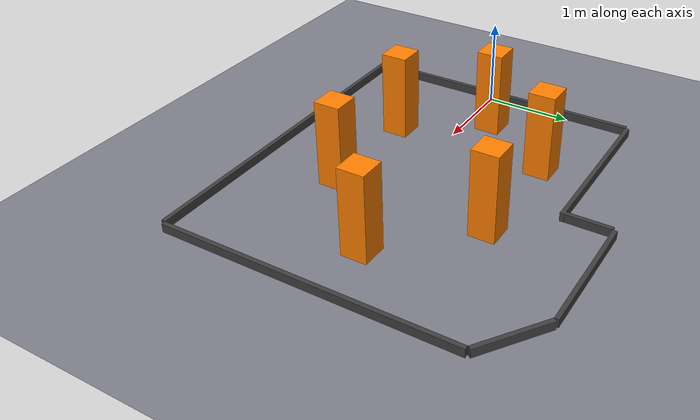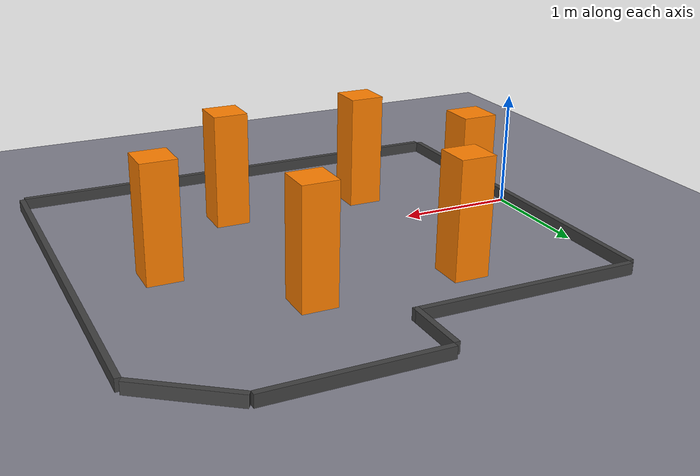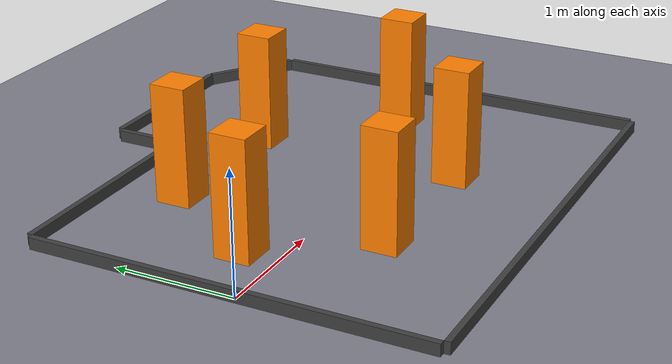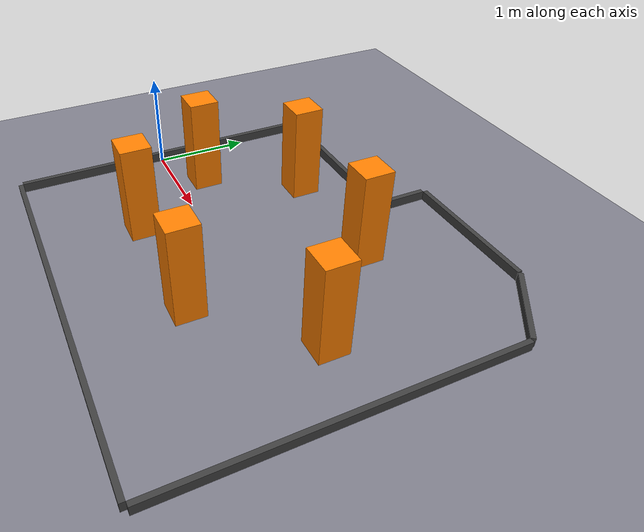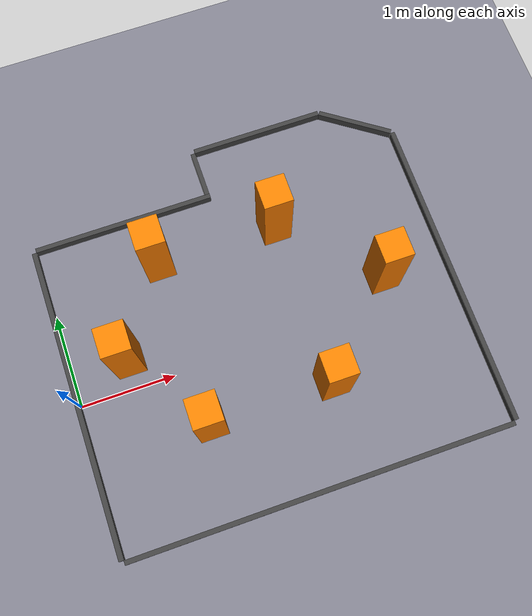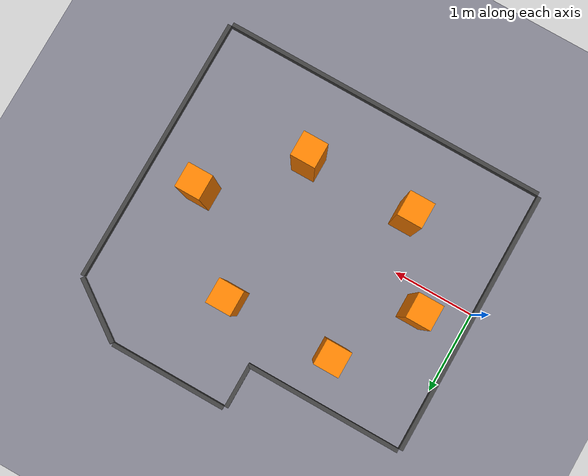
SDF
<?xml version="1.0" encoding="UTF-8"?>
<sdf version="1.9">
  <world name="kthspacelab">
    <physics type="ode">
      <max_step_size>0.006</max_step_size>
      <real_time_factor>1.0</real_time_factor>
      <real_time_update_rate>200</real_time_update_rate>
    </physics>
    <gravity>0 0 -9.8</gravity>
    <magnetic_field>6e-06 2.3e-05 -4.2e-05</magnetic_field>
    <atmosphere type="adiabatic"/>
    <scene>
      <grid>false</grid>
      <ambient>0.8 0.8 0.8 1</ambient>
      <background>0.05 0.05 0.07 1</background>
      <shadows>true</shadows>
    </scene>
    <model name="ground_plane">
      <static>true</static>
      <link name="link">
        <collision name="collision">
          <geometry>
            <plane>
              <normal>0 0 1</normal>
              <size>6 6</size>
            </plane>
          </geometry>
        </collision>
        <visual name="visual">
          <geometry>
            <plane>
              <normal>0 0 1</normal>
              <size>6 6</size>
            </plane>
          </geometry>
          <material>
            <ambient>0.95 0.95 0.95 1</ambient>
            <diffuse>0.5 0.5 0.55 1</diffuse>
            <specular>0.2 0.2 0.2 1</specular>
            <emissive>0 0 0 1</emissive>
          </material>
        </visual>
        <pose>2.0 0.5 0 0 0 0</pose>
        <enable_wind>false</enable_wind>
      </link>
      <pose>0 0 0 0 -0 0</pose>
      <self_collide>false</self_collide>
    </model>
    <light name="sunUTC" type="directional">
      <pose>0 0 500 0 -0 0</pose>
      <cast_shadows>true</cast_shadows>
      <intensity>1.5</intensity>
      <direction>0.2 0.6 -0.8</direction>
      <diffuse>1 1 0.98 1</diffuse>
      <specular>0.3 0.3 0.3 1</specular>
      <attenuation>
        <range>2000</range>
        <linear>0</linear>
        <constant>1</constant>
        <quadratic>0</quadratic>
      </attenuation>
    </light>
    <spherical_coordinates>
      <surface_model>EARTH_WGS84</surface_model>
      <world_frame_orientation>ENU</world_frame_orientation>
      <latitude_deg>47.397971057728974</latitude_deg>
      <longitude_deg> 8.546163739800146</longitude_deg>
      <elevation>0</elevation>
    </spherical_coordinates>

    <!-- KTH Space Robotics Lab Floor Area -->
    <model name="wall_perimeter">
      <static>true</static>
      <link name="segment_0">
        <pose>2.05000 -1.60500 0.050 0 0 0.00000</pose>
        <collision name="collision">
          <geometry>
            <box><size>4.10000 0.05 0.1</size></box>
          </geometry>
          <surface>
            <bounce>
              <restitution_coefficient>1.0</restitution_coefficient>
              <threshold>0.0</threshold>
            </bounce>
            <friction>
              <ode>
                <mu>0.0</mu>
                <mu2>0.0</mu2>
              </ode>
            </friction>
            <contact>
              <ode>
                <kp>10000</kp>
                <kd>500</kd>
              </ode>
            </contact>
          </surface>
        </collision>
        <visual name="visual">
          <geometry>
            <box><size>4.10000 0.05 0.1</size></box>
          </geometry>
          <material>
            <ambient>0.2 0.2 0.2 1</ambient>
            <diffuse>0.25 0.25 0.25 1</diffuse>
            <specular>0.05 0.05 0.05 1</specular>
            <emissive>0 0 0 1</emissive>
          </material>
        </visual>
      </link>
      <link name="segment_1">
        <pose>4.12500 0.12000 0.050 0 0 1.57080</pose>
        <collision name="collision">
          <geometry>
            <box><size>3.40000 0.05 0.1</size></box>
          </geometry>
          <surface>
            <bounce>
              <restitution_coefficient>1.0</restitution_coefficient>
              <threshold>0.0</threshold>
            </bounce>
            <friction>
              <ode>
                <mu>0.0</mu>
                <mu2>0.0</mu2>
              </ode>
            </friction>
            <contact>
              <ode>
                <kp>10000</kp>
                <kd>500</kd>
              </ode>
            </contact>
          </surface>
        </collision>
        <visual name="visual">
          <geometry>
            <box><size>3.40000 0.05 0.1</size></box>
          </geometry>
          <material>
            <ambient>0.2 0.2 0.2 1</ambient>
            <diffuse>0.25 0.25 0.25 1</diffuse>
            <specular>0.05 0.05 0.05 1</specular>
            <emissive>0 0 0 1</emissive>
          </material>
        </visual>
      </link>
      <link name="segment_2">
        <pose>3.77442 2.08042 0.050 0 0 2.52693</pose>
        <collision name="collision">
          <geometry>
            <box><size>0.83235 0.05 0.1</size></box>
          </geometry>
          <surface>
            <bounce>
              <restitution_coefficient>1.0</restitution_coefficient>
              <threshold>0.0</threshold>
            </bounce>
            <friction>
              <ode>
                <mu>0.0</mu>
                <mu2>0.0</mu2>
              </ode>
            </friction>
            <contact>
              <ode>
                <kp>10000</kp>
                <kd>500</kd>
              </ode>
            </contact>
          </surface>
        </collision>
        <visual name="visual">
          <geometry>
            <box><size>0.83235 0.05 0.1</size></box>
          </geometry>
          <material>
            <ambient>0.2 0.2 0.2 1</ambient>
            <diffuse>0.25 0.25 0.25 1</diffuse>
            <specular>0.05 0.05 0.05 1</specular>
            <emissive>0 0 0 1</emissive>
          </material>
        </visual>
      </link>
      <link name="segment_3">
        <pose>2.69000 2.32500 0.050 0 0 3.14159</pose>
        <collision name="collision">
          <geometry>
            <box><size>1.46000 0.05 0.1</size></box>
          </geometry>
          <surface>
            <bounce>
              <restitution_coefficient>1.0</restitution_coefficient>
              <threshold>0.0</threshold>
            </bounce>
            <friction>
              <ode>
                <mu>0.0</mu>
                <mu2>0.0</mu2>
              </ode>
            </friction>
            <contact>
              <ode>
                <kp>10000</kp>
                <kd>500</kd>
              </ode>
            </contact>
          </surface>
        </collision>
        <visual name="visual">
          <geometry>
            <box><size>1.46000 0.05 0.1</size></box>
          </geometry>
          <material>
            <ambient>0.2 0.2 0.2 1</ambient>
            <diffuse>0.25 0.25 0.25 1</diffuse>
            <specular>0.05 0.05 0.05 1</specular>
            <emissive>0 0 0 1</emissive>
          </material>
        </visual>
      </link>
      <link name="segment_4">
        <pose>1.93500 2.02000 0.050 0 0 -1.57080</pose>
        <collision name="collision">
          <geometry>
            <box><size>0.56000 0.05 0.1</size></box>
          </geometry>
          <surface>
            <bounce>
              <restitution_coefficient>1.0</restitution_coefficient>
              <threshold>0.0</threshold>
            </bounce>
            <friction>
              <ode>
                <mu>0.0</mu>
                <mu2>0.0</mu2>
              </ode>
            </friction>
            <contact>
              <ode>
                <kp>10000</kp>
                <kd>500</kd>
              </ode>
            </contact>
          </surface>
        </collision>
        <visual name="visual">
          <geometry>
            <box><size>0.56000 0.05 0.1</size></box>
          </geometry>
          <material>
            <ambient>0.2 0.2 0.2 1</ambient>
            <diffuse>0.25 0.25 0.25 1</diffuse>
            <specular>0.05 0.05 0.05 1</specular>
            <emissive>0 0 0 1</emissive>
          </material>
        </visual>
      </link>
      <link name="segment_5">
        <pose>0.98000 1.76500 0.050 0 0 3.14159</pose>
        <collision name="collision">
          <geometry>
            <box><size>1.96000 0.05 0.1</size></box>
          </geometry>
          <surface>
            <bounce>
              <restitution_coefficient>1.0</restitution_coefficient>
              <threshold>0.0</threshold>
            </bounce>
            <friction>
              <ode>
                <mu>0.0</mu>
                <mu2>0.0</mu2>
              </ode>
            </friction>
            <contact>
              <ode>
                <kp>10000</kp>
                <kd>500</kd>
              </ode>
            </contact>
          </surface>
        </collision>
        <visual name="visual">
          <geometry>
            <box><size>1.96000 0.05 0.1</size></box>
          </geometry>
          <material>
            <ambient>0.2 0.2 0.2 1</ambient>
            <diffuse>0.25 0.25 0.25 1</diffuse>
            <specular>0.05 0.05 0.05 1</specular>
            <emissive>0 0 0 1</emissive>
          </material>
        </visual>
      </link>
      <link name="segment_6">
        <pose>-0.02500 0.08000 0.050 0 0 -1.57080</pose>
        <collision name="collision">
          <geometry>
            <box><size>3.32000 0.05 0.1</size></box>
          </geometry>
          <surface>
            <bounce>
              <restitution_coefficient>1.0</restitution_coefficient>
              <threshold>0.0</threshold>
            </bounce>
            <friction>
              <ode>
                <mu>0.0</mu>
                <mu2>0.0</mu2>
              </ode>
            </friction>
            <contact>
              <ode>
                <kp>10000</kp>
                <kd>500</kd>
              </ode>
            </contact>
          </surface>
        </collision>
        <visual name="visual">
          <geometry>
            <box><size>3.32000 0.05 0.1</size></box>
          </geometry>
          <material>
            <ambient>0.2 0.2 0.2 1</ambient>
            <diffuse>0.25 0.25 0.25 1</diffuse>
            <specular>0.05 0.05 0.05 1</specular>
            <emissive>0 0 0 1</emissive>
          </material>
        </visual>
      </link>
    </model>

    <model name="obstacle_1">
      <static>1</static>
      <link name="link">
        <collision name="collision">
          <geometry><box><size>0.3 0.3 1.0</size></box></geometry>
        </collision>
        <visual name="visual">
          <geometry><box><size>0.3 0.3 1.0</size></box></geometry>
          <material>
            <ambient>1 0.5 0 1</ambient>
            <diffuse>1 0.5 0 1</diffuse>
          </material>
        </visual>
      </link>
      <pose>1.2 -0.6 0.5 0 0 0</pose>
    </model>

    <model name="obstacle_2">
      <static>1</static>
      <link name="link">
        <collision name="collision">
          <geometry><box><size>0.3 0.3 1.0</size></box></geometry>
        </collision>
        <visual name="visual">
          <geometry><box><size>0.3 0.3 1.0</size></box></geometry>
          <material>
            <ambient>1 0.5 0 1</ambient>
            <diffuse>1 0.5 0 1</diffuse>
          </material>
        </visual>
      </link>
      <pose>1.2 1.2 0.5 0 0 0</pose>
    </model>

    <model name="obstacle_3">
      <static>1</static>
      <link name="link">
        <collision name="collision">
          <geometry><box><size>0.3 0.3 1.0</size></box></geometry>
        </collision>
        <visual name="visual">
          <geometry><box><size>0.3 0.3 1.0</size></box></geometry>
          <material>
            <ambient>1 0.5 0 1</ambient>
            <diffuse>1 0.5 0 1</diffuse>
          </material>
        </visual>
      </link>
      <pose>2.5 -0.6 0.5 0 0 0</pose>
    </model>

    <model name="obstacle_4">
      <static>1</static>
      <link name="link">
        <collision name="collision">
          <geometry><box><size>0.3 0.3 1.0</size></box></geometry>
        </collision>
        <visual name="visual">
          <geometry><box><size>0.3 0.3 1.0</size></box></geometry>
          <material>
            <ambient>1 0.5 0 1</ambient>
            <diffuse>1 0.5 0 1</diffuse>
          </material>
        </visual>
      </link>
      <pose>2.5 1.2 0.5 0 0 0</pose>
    </model>

    <model name="obstacle_5">
      <static>1</static>
      <link name="link">
        <collision name="collision">
          <geometry><box><size>0.3 0.3 1.0</size></box></geometry>
        </collision>
        <visual name="visual">
          <geometry><box><size>0.3 0.3 1.0</size></box></geometry>
          <material>
            <ambient>1 0.5 0 1</ambient>
            <diffuse>1 0.5 0 1</diffuse>
          </material>
        </visual>
      </link>
      <pose>3.4 0.3 0.5 0 0 0</pose>
    </model>

    <model name="obstacle_6">
      <static>1</static>
      <link name="link">
        <collision name="collision">
          <geometry><box><size>0.3 0.3 1.0</size></box></geometry>
        </collision>
        <visual name="visual">
          <geometry><box><size>0.3 0.3 1.0</size></box></geometry>
          <material>
            <ambient>1 0.5 0 1</ambient>
            <diffuse>1 0.5 0 1</diffuse>
          </material>
        </visual>
      </link>
      <pose>0.6 0.3 0.5 0 0 0</pose>
    </model>
  </world>
</sdf>
